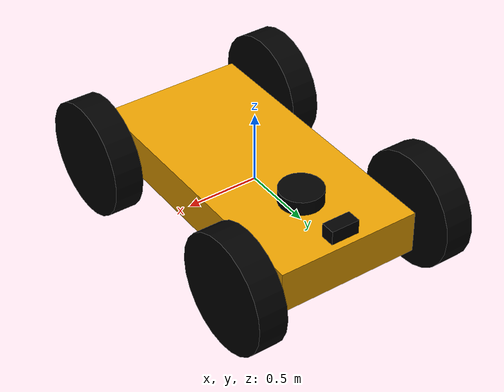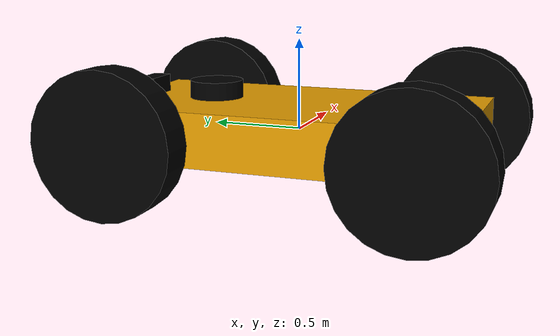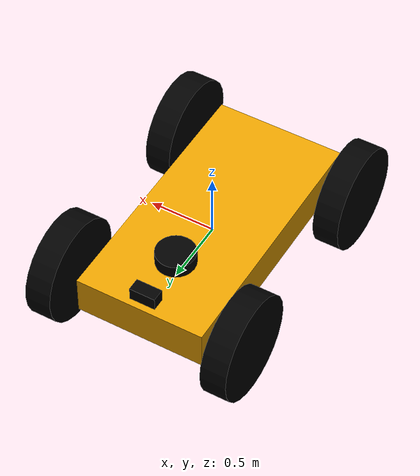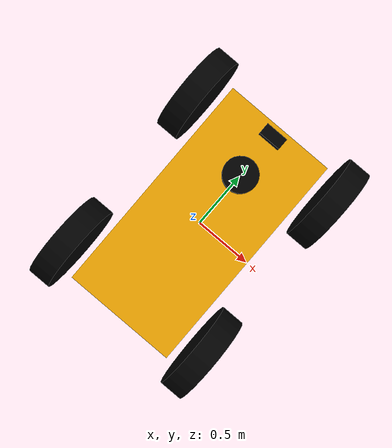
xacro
<?xml version='1.0' ?>

<robot name="jetracer" xmlns:xacro="http://www.ros.org/wiki/xacro">

  <material name="black">
    <color rgba="0 0 0 1"/>
  </material>

  <link name="base">
    <visual>
      <orgin rpy="0 0 0" xyz="0 0 0"/>
      <geometry>
        <box size="1 2 0.3"/>
      </geometry>
    </visual>
  </link>

  <!--Front left wheel-->
  <joint name="fl_holder_joint" type="revolute">
    <axis xyz="0 0 1"/>
    <limit effort="1000.0" lower="-0.4" upper="0.4" velocity="0.5"/>
    <origin rpy="0 0 0" xyz="-0.5 0.8 0"/>
    <parent link="base"/>
    <child link="fl_wheel_link"/>
  </joint>

  <link name="fl_wheel_link">
    <visual>
      <orgin rpy="0 0 0" xyz="-0.7 0.8 0"/>
      <geometry>
        <box size="0 0 0"/>
      </geometry>
    </visual>
  </link>

  <joint name="fl_wheel_joint" type="continuous">
    <axis xyz="0 0 1"/>
    <origin rpy="0 1.57 0" xyz="-0.2 0 0"/>
    <parent link="fl_wheel_link"/>
    <child link="fl_wheel"/>
  </joint>

  <link name="fl_wheel">
    <visual>
      <orgin rpy="0 0 0" xyz="-0.7 0.8 0"/>
      <geometry>
        <cylinder radius="0.4" length="0.2"/>
      </geometry>
      <material name="black"/>
    </visual>
  </link>

  <!--Front right wheel-->
  <joint name="fr_holder_joint" type="revolute">
    <axis xyz="0 0 1"/>
    <limit effort="1000.0" lower="-0.4" upper="0.4" velocity="0.5"/>
    <origin rpy="0 0 0" xyz="0.5 0.8 0"/>
    <parent link="base"/>
    <child link="fr_wheel_link"/>
  </joint>

  <link name="fr_wheel_link">
    <visual>
      <orgin rpy="0 0 0" xyz="0.7 0.8 0"/>
      <geometry>
        <box size="0 0 0"/>
      </geometry>
    </visual>
  </link>

  <joint name="fr_wheel_joint" type="continuous">
    <axis xyz="0 0 1"/>
    <origin rpy="0 1.57 0" xyz="0.2 0 0"/>
    <parent link="fr_wheel_link"/>
    <child link="fr_wheel"/>
  </joint>

  <link name="fr_wheel">
    <visual>
      <orgin rpy="0 0 0" xyz="0.7 0.8 0"/>
      <geometry>
        <cylinder radius="0.4" length="0.2"/>
      </geometry>
      <material name="black"/>
    </visual>
  </link>

  <!--Rear left wheel-->
  <joint name="rl_wheel_joint" type="continuous">
    <axis xyz="0 0 1"/>
    <origin rpy="0 1.57 0" xyz="-0.7 -0.8 0"/>
    <parent link="base"/>
    <child link="rl_wheel"/>
  </joint>

  <link name="rl_wheel">
    <visual>
      <orgin rpy="0 0 0" xyz="-0.7 -0.8 0"/>
      <geometry>
        <cylinder radius="0.4" length="0.2"/>
      </geometry>
      <material name="black"/>
    </visual>
  </link>

  <!--Rear right wheel-->
  <joint name="rr_wheel_joint" type="continuous">
    <axis xyz="0 0 1"/>
    <origin rpy="0 1.57 0" xyz="0.7 -0.8 0"/>
    <parent link="base"/>
    <child link="rr_wheel"/>
  </joint>

  <link name="rr_wheel">
    <visual>
      <orgin rpy="0 0 0" xyz="0.7 -0.8 0"/>
      <geometry>
        <cylinder radius="0.4" length="0.2"/>
      </geometry>
      <material name="black"/>
    </visual>
  </link>

  <!-- Lidar (RPLIDAR A1) -->
  <joint name="laser_joint" type="fixed">
    <origin xyz="0 0.5 0.2" rpy="0 0 1.5708"/>
    <parent link="base"/>
    <child link="laser_frame"/>
  </joint>

  <link name="laser_frame">
    <visual>
      <origin xyz="0 0 0" rpy="0 0 0"/>
      <geometry>
        <cylinder radius="0.15" length="0.1"/>
      </geometry>
      <material name="black"/>
    </visual>
  </link>

  <!-- Camera (IMX219) -->
  <joint name="camera_joint" type="fixed">
    <origin xyz="0 0.9 0.2" rpy="0 0 1.5708"/>
    <parent link="base"/>
    <child link="camera_link"/>
  </joint>

  <link name="camera_link">
    <visual>
      <origin xyz="0 0 0" rpy="0 0 0"/>
      <geometry>
        <box size="0.1 0.2 0.1"/>
      </geometry>
      <material name="black"/>
    </visual>
  </link>

</robot>
